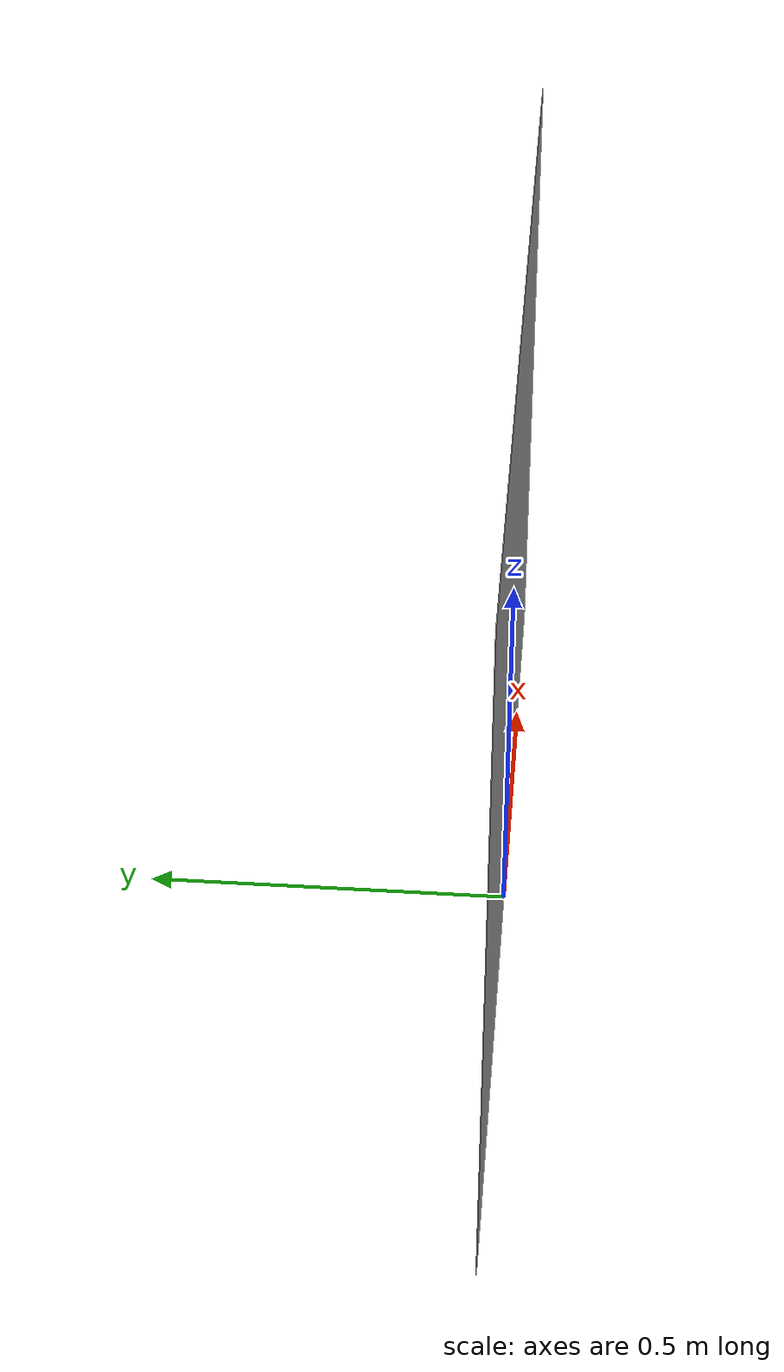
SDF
<?xml version='1.0'?>
<sdf version='1.6'>
<model name='slide-5'>
  <static>1</static>
  <link name='link'>
    <pose frame=''>0 0 0.45 0 -0 0</pose>
    <visual name='visual'>
      <cast_shadows>0</cast_shadows>
      <geometry>
        <box>
          <size>1.6 0.001 0.9</size>
        </box>
      </geometry>
      <material>
        <script>
          <uri>model://slide-5/materials/scripts</uri>
          <uri>model://slide-5/materials/textures</uri>
          <name>Slides/slide_5</name>
        </script>
      </material>
    </visual>
  </link>
</model>
</sdf>
